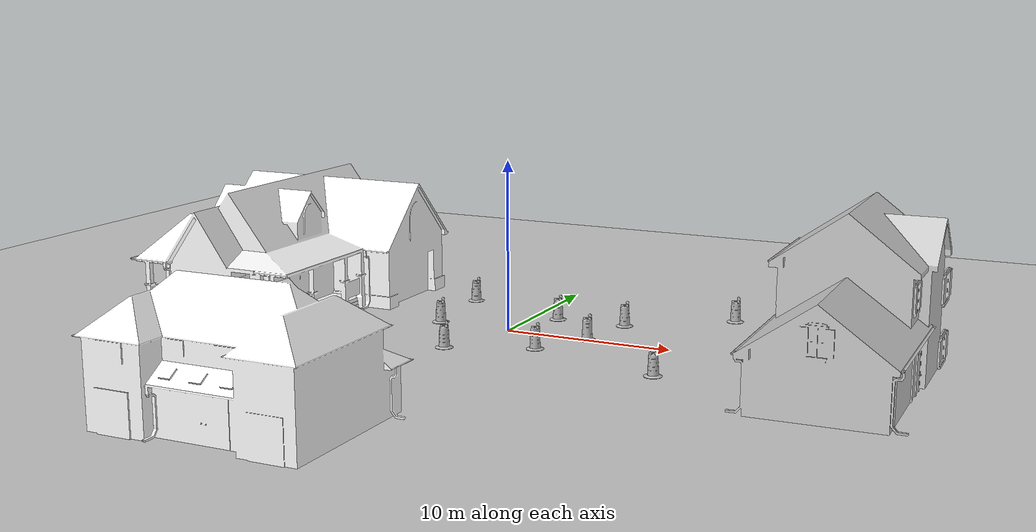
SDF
<sdf version="1.7">
 <world name="default">
  <light name="sun" type="directional">
   <pose>0 0 10 0 -0 0</pose>
   <diffuse>0.8 0.8 0.8 1</diffuse>
   <specular>0.2 0.2 0.2 1</specular>
   <attenuation>
    <range>1000</range>
    <constant>0.9</constant>
    <linear>0.01</linear>
    <quadratic>0.001</quadratic>
   </attenuation>
   <direction>-0.5 0.1 -0.9</direction>
   <spot><inner_angle>0</inner_angle><outer_angle>0</outer_angle><falloff>0</falloff></spot>
  </light>
  <model name="ground_plane">
   <static>1</static>
   <link name="link">
    <collision name="collision">
     <geometry><plane><normal>0 0 1</normal><size>100 100</size></plane></geometry>
     <surface><friction><ode><mu>100</mu><mu2>50</mu2></ode></friction></surface>
    </collision>
    <visual name="visual">
     <cast_shadows>0</cast_shadows>
     <geometry><plane><normal>0 0 1</normal><size>100 100</size></plane></geometry>
     <material>
      <script><uri>file://media/materials/scripts/gazebo.material</uri><name>Gazebo/Grey</name></script>
     </material>
    </visual>
   </link>
  </model>
  <gravity>0 0 -9.8</gravity>
  <magnetic_field>6e-06 2.3e-05 -4.2e-05</magnetic_field>
  <atmosphere type="adiabatic"/>
  <physics type="ode">
   <max_step_size>0.001</max_step_size>
   <real_time_factor>1</real_time_factor>
   <real_time_update_rate>1000</real_time_update_rate>
  </physics>
  <scene><ambient>0.4 0.4 0.4 1</ambient><background>0.7 0.7 0.7 1</background><shadows>1</shadows></scene>
  <audio><device>default</device></audio>
  <spherical_coordinates>
   <surface_model>EARTH_WGS84</surface_model>
   <latitude_deg>0</latitude_deg>
   <longitude_deg>0</longitude_deg>
   <elevation>0</elevation>
   <heading_deg>0</heading_deg>
  </spherical_coordinates>
  <model name="House 1">
   <static>1</static>
   <link name="link">
    <collision name="collision">
     <geometry><mesh><uri>model://house_1/meshes/house_1.dae</uri><scale>1.5 1.5 1.5</scale></mesh></geometry>
    </collision>
    <visual name="visual">
     <geometry><mesh><uri>model://house_1/meshes/house_1.dae</uri><scale>1.5 1.5 1.5</scale></mesh></geometry>
     <material>
      <script>
       <uri>model://house_1/materials/scripts</uri>
       <uri>model://house_1/materials/textures</uri>
       <name>House_1/Diffuse</name>
      </script>
      <shader type="normal_map_tangent_space"><normal_map>House_1_Normal.png</normal_map></shader>
     </material>
    </visual>
   </link>
   <pose>-15.5229 1.03701 0 0 -0 1.56626</pose>
  </model>
  <model name="House 2">
   <static>1</static>
   <link name="link">
    <collision name="collision">
     <geometry><mesh><uri>model://house_2/meshes/house_2.dae</uri><scale>1.5 1.5 1.5</scale></mesh></geometry>
    </collision>
    <visual name="visual">
     <geometry><mesh><uri>model://house_2/meshes/house_2.dae</uri><scale>1.5 1.5 1.5</scale></mesh></geometry>
     <material>
      <script>
       <uri>model://house_2/materials/scripts</uri>
       <uri>model://house_2/materials/textures</uri>
       <uri>model://house_1/materials/textures</uri>
       <name>House_2/Diffuse</name>
      </script>
      <shader type="normal_map_tangent_space">
       <normal_map>model://house_1/materials/textures/House_1_Normal.png</normal_map>
      </shader>
     </material>
    </visual>
   </link>
   <pose>-4.65336 -21.2324 0 0 -0 0</pose>
  </model>
  <model name="House 3">
   <static>1</static>
   <link name="link">
    <collision name="collision">
     <geometry><mesh><uri>model://house_3/meshes/house_3.dae</uri><scale>1.5 1.5 1.5</scale></mesh></geometry>
    </collision>
    <visual name="visual">
     <geometry><mesh><uri>model://house_3/meshes/house_3.dae</uri><scale>1.5 1.5 1.5</scale></mesh></geometry>
     <material>
      <script>
       <uri>model://house_3/materials/scripts</uri>
       <uri>model://house_3/materials/textures</uri>
       <uri>model://house_1/materials/textures</uri>
       <name>House_3/Diffuse</name>
      </script>
      <shader type="normal_map_tangent_space">
       <normal_map>model://house_1/materials/textures/House_1_Normal.png</normal_map>
      </shader>
     </material>
    </visual>
   </link>
   <pose>20.4789 -3.71274 0 0 0 -1.54311</pose>
  </model>
  <model name="Construction Barrel">
   <link name="link">
    <inertial>
     <pose>0 0 0.4 0 -0 0</pose>
     <mass>500</mass>
     <inertia><ixx>51.2096</ixx><iyy>51.2096</iyy><izz>25</izz><ixy>0</ixy><ixz>0</ixz><iyz>0</iyz></inertia>
    </inertial>
    <collision name="collision">
     <geometry><mesh><uri>model://construction_barrel/meshes/construction_barrel.dae</uri></mesh></geometry>
    </collision>
    <visual name="visual">
     <geometry><mesh><uri>model://construction_barrel/meshes/construction_barrel.dae</uri></mesh></geometry>
    </visual>
   </link>
   <pose>4.95274 0.097706 -1e-06 1e-06 -9e-06 -1.3e-05</pose>
  </model>
  <model name="Construction Barrel_0">
   <link name="link">
    <inertial>
     <pose>0 0 0.4 0 -0 0</pose>
     <mass>500</mass>
     <inertia><ixx>51.2096</ixx><iyy>51.2096</iyy><izz>25</izz><ixy>0</ixy><ixz>0</ixz><iyz>0</iyz></inertia>
    </inertial>
    <collision name="collision">
     <geometry><mesh><uri>model://construction_barrel/meshes/construction_barrel.dae</uri></mesh></geometry>
    </collision>
    <visual name="visual">
     <geometry><mesh><uri>model://construction_barrel/meshes/construction_barrel.dae</uri></mesh></geometry>
    </visual>
   </link>
   <pose>5.73493 3.90083 -1e-06 4e-06 -2e-06 -1.7e-05</pose>
  </model>
  <model name="Construction Barrel_clone">
   <link name="link">
    <inertial>
     <pose>0 0 0.4 0 -0 0</pose>
     <mass>500</mass>
     <inertia><ixx>51.2096</ixx><iyy>51.2096</iyy><izz>25</izz><ixy>0</ixy><ixz>0</ixz><iyz>0</iyz></inertia>
    </inertial>
    <collision name="collision">
     <geometry><mesh><uri>model://construction_barrel/meshes/construction_barrel.dae</uri></mesh></geometry>
    </collision>
    <visual name="visual">
     <geometry><mesh><uri>model://construction_barrel/meshes/construction_barrel.dae</uri></mesh></geometry>
    </visual>
   </link>
   <pose>3.10929 -2.96538 1e-06 6e-06 7e-06 -1.8e-05</pose>
  </model>
  <model name="Construction Barrel_clone_0">
   <link name="link">
    <inertial>
     <pose>0 0 0.4 0 -0 0</pose>
     <mass>500</mass>
     <inertia><ixx>51.2096</ixx><iyy>51.2096</iyy><izz>25</izz><ixy>0</ixy><ixz>0</ixz><iyz>0</iyz></inertia>
    </inertial>
    <collision name="collision">
     <geometry><mesh><uri>model://construction_barrel/meshes/construction_barrel.dae</uri></mesh></geometry>
    </collision>
    <visual name="visual">
     <geometry><mesh><uri>model://construction_barrel/meshes/construction_barrel.dae</uri></mesh></geometry>
    </visual>
   </link>
   <pose>-1.61849 -4.88299 -1e-06 5e-06 -3e-06 -9e-06</pose>
  </model>
  <model name="Construction Barrel_clone_1">
   <link name="link">
    <inertial>
     <pose>0 0 0.4 0 -0 0</pose>
     <mass>500</mass>
     <inertia><ixx>51.2096</ixx><iyy>51.2096</iyy><izz>25</izz><ixy>0</ixy><ixz>0</ixz><iyz>0</iyz></inertia>
    </inertial>
    <collision name="collision">
     <geometry><mesh><uri>model://construction_barrel/meshes/construction_barrel.dae</uri></mesh></geometry>
    </collision>
    <visual name="visual">
     <geometry><mesh><uri>model://construction_barrel/meshes/construction_barrel.dae</uri></mesh></geometry>
    </visual>
   </link>
   <pose>1.53114 3.65175 -0 0 -8e-06 -1.5e-05</pose>
  </model>
  <model name="Construction Barrel_clone_2">
   <link name="link">
    <inertial>
     <pose>0 0 0.4 0 -0 0</pose>
     <mass>500</mass>
     <inertia><ixx>51.2096</ixx><iyy>51.2096</iyy><izz>25</izz><ixy>0</ixy><ixz>0</ixz><iyz>0</iyz></inertia>
    </inertial>
    <collision name="collision">
     <geometry><mesh><uri>model://construction_barrel/meshes/construction_barrel.dae</uri></mesh></geometry>
    </collision>
    <visual name="visual">
     <geometry><mesh><uri>model://construction_barrel/meshes/construction_barrel.dae</uri></mesh></geometry>
    </visual>
   </link>
   <pose>-5.10336 5.80832 -2e-06 8e-06 -4e-06 -1.4e-05</pose>
  </model>
  <model name="Construction Barrel_clone_3">
   <link name="link">
    <inertial>
     <pose>0 0 0.4 0 -0 0</pose>
     <mass>500</mass>
     <inertia><ixx>51.2096</ixx><iyy>51.2096</iyy><izz>25</izz><ixy>0</ixy><ixz>0</ixz><iyz>0</iyz></inertia>
    </inertial>
    <collision name="collision">
     <geometry><mesh><uri>model://construction_barrel/meshes/construction_barrel.dae</uri></mesh></geometry>
    </collision>
    <visual name="visual">
     <geometry><mesh><uri>model://construction_barrel/meshes/construction_barrel.dae</uri></mesh></geometry>
    </visual>
   </link>
   <pose>11.3374 7.69479 -1e-06 3e-06 -2e-06 -1.3e-05</pose>
  </model>
  <model name="Construction Barrel_clone_4">
   <link name="link">
    <inertial>
     <pose>0 0 0.4 0 -0 0</pose>
     <mass>500</mass>
     <inertia><ixx>51.2096</ixx><iyy>51.2096</iyy><izz>25</izz><ixy>0</ixy><ixz>0</ixz><iyz>0</iyz></inertia>
    </inertial>
    <collision name="collision">
     <geometry><mesh><uri>model://construction_barrel/meshes/construction_barrel.dae</uri></mesh></geometry>
    </collision>
    <visual name="visual">
     <geometry><mesh><uri>model://construction_barrel/meshes/construction_barrel.dae</uri></mesh></geometry>
    </visual>
   </link>
   <pose>10.9472 -5.15343 0 0 -0 -1.2e-05</pose>
  </model>
  <model name="Construction Barrel_clone_5">
   <link name="link">
    <inertial>
     <pose>0 0 0.4 0 -0 0</pose>
     <mass>500</mass>
     <inertia><ixx>51.2096</ixx><iyy>51.2096</iyy><izz>25</izz><ixy>0</ixy><ixz>0</ixz><iyz>0</iyz></inertia>
    </inertial>
    <collision name="collision">
     <geometry><mesh><uri>model://construction_barrel/meshes/construction_barrel.dae</uri></mesh></geometry>
    </collision>
    <visual name="visual">
     <geometry><mesh><uri>model://construction_barrel/meshes/construction_barrel.dae</uri></mesh></geometry>
    </visual>
   </link>
   <pose>-6.02539 -7.19923 -3e-06 0 -1.2e-05 -1.1e-05</pose>
  </model>
  <model name="Construction Barrel_clone_6">
   <link name="link">
    <inertial>
     <pose>0 0 0.4 0 -0 0</pose>
     <mass>500</mass>
     <inertia><ixx>51.2096</ixx><iyy>51.2096</iyy><izz>25</izz><ixy>0</ixy><ixz>0</ixz><iyz>0</iyz></inertia>
    </inertial>
    <collision name="collision">
     <geometry><mesh><uri>model://construction_barrel/meshes/construction_barrel.dae</uri></mesh></geometry>
    </collision>
    <visual name="visual">
     <geometry><mesh><uri>model://construction_barrel/meshes/construction_barrel.dae</uri></mesh></geometry>
    </visual>
   </link>
   <pose>-4.53019 0.063504 -3e-06 -4e-06 -5e-06 -1.9e-05</pose>
  </model>
 </world>
</sdf>
